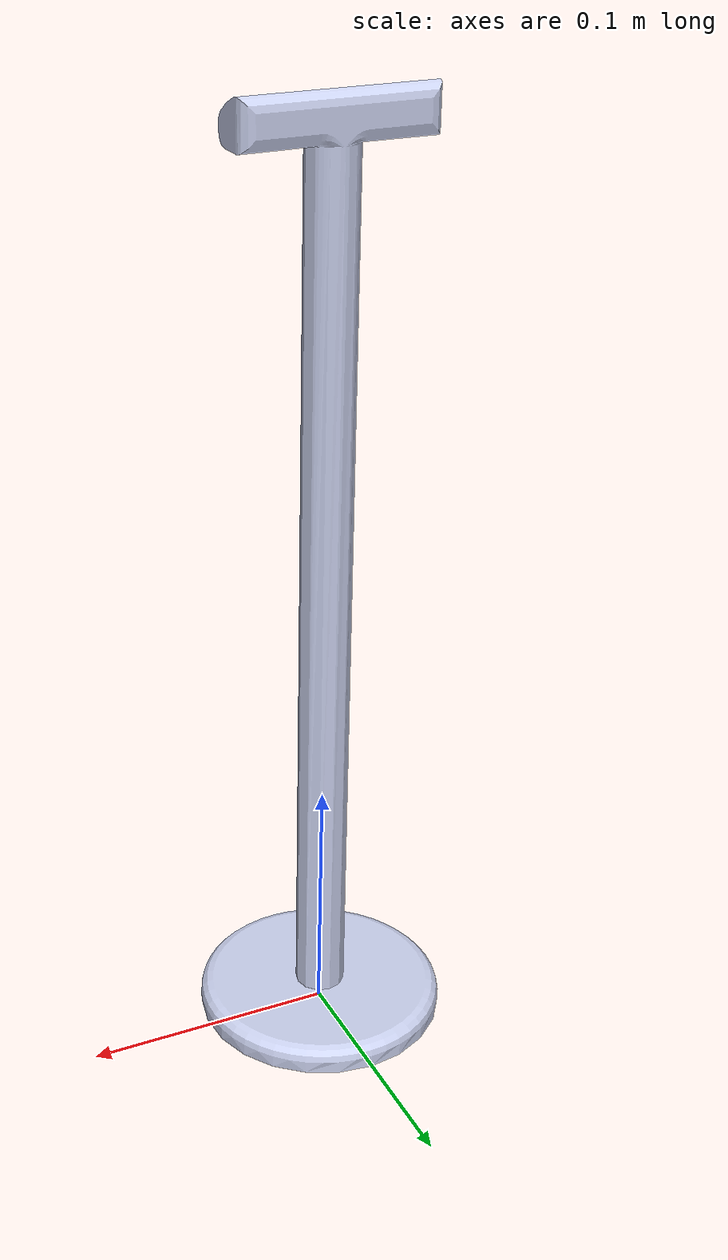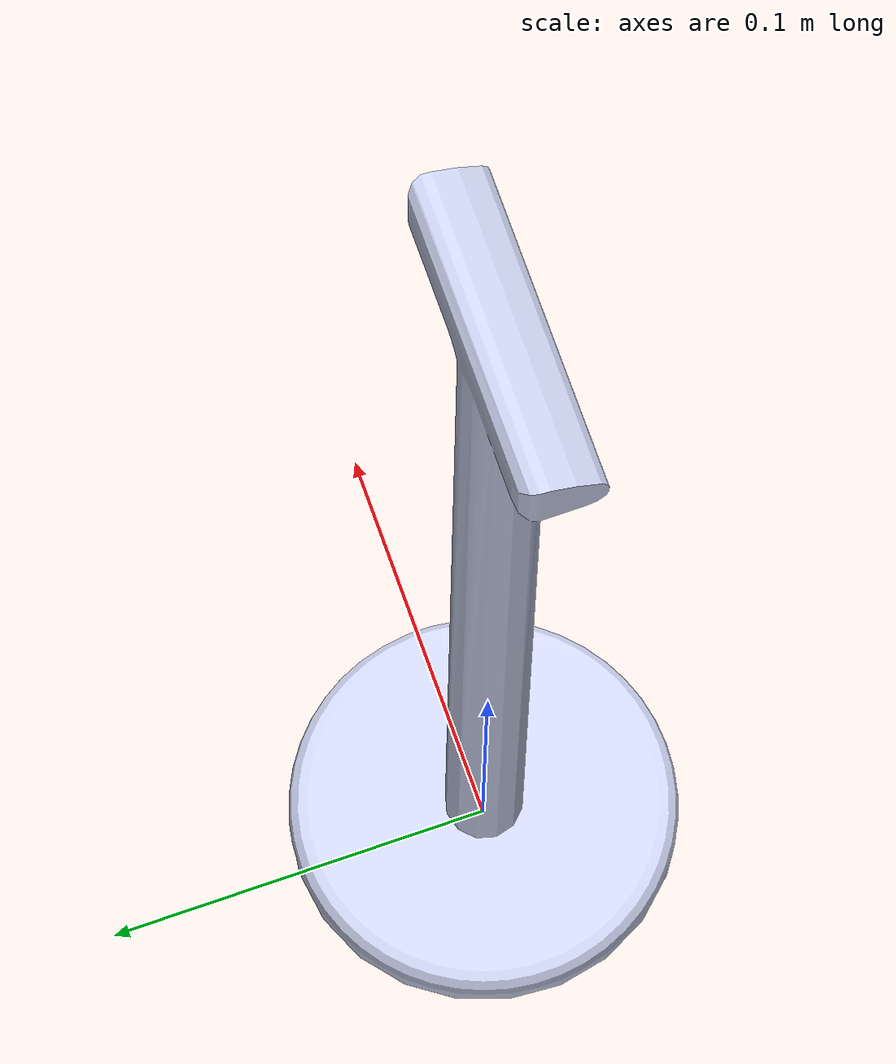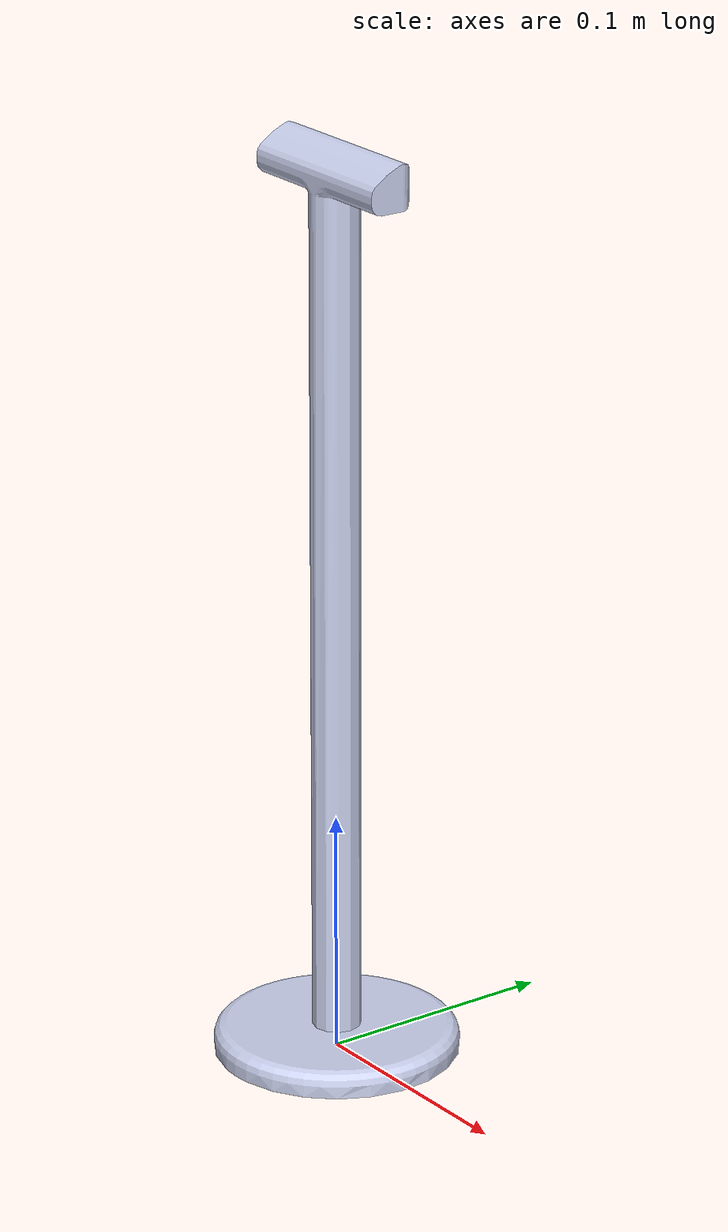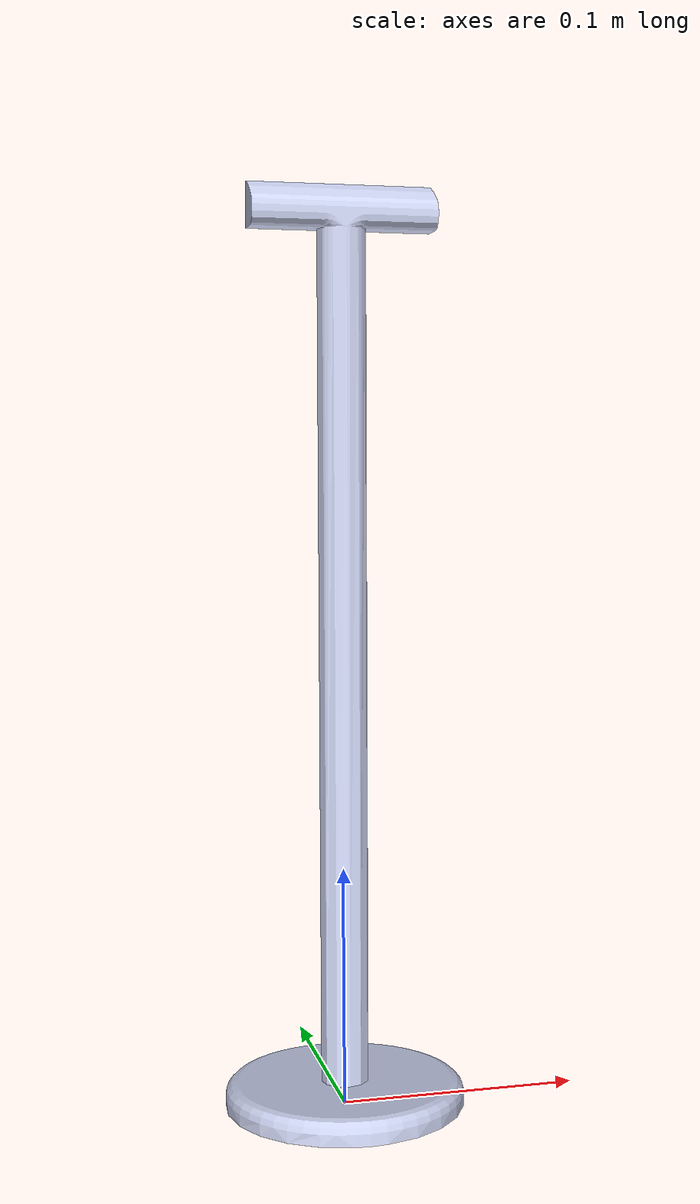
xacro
<?xml version="1.0" ?>
<robot
  name="camera_urdf" xmlns:xacro="http://ros.org/wiki/xacro">
  <link
    name="camera_base_link">
    <inertial>
      <origin
        xyz="-9.38726697477174E-08 8.20875611498E-05 0.13869018261447"
        rpy="0 0 0" />
      <mass
        value="0.209477059795264" />
      <inertia
        ixx="0.00397812724282523"
        ixy="3.16866821021073E-10"
        ixz="4.00938618070252E-09"
        iyy="0.00398789261449742"
        iyz="-4.06503680049778E-06"
        izz="0.000110809016168446" />
    </inertial>
    <visual>
      <origin
        xyz="0 0 0"
        rpy="0 0 0" />
      <geometry>
        <mesh
          filename="package://crx_description/meshes/base_link_camera.STL" />
      </geometry>
      <material
        name="">
        <color
          rgba="0.792156862745098 0.819607843137255 0.933333333333333 1" />
      </material>
    </visual>
    <collision>
      <origin
        xyz="0 0 0"
        rpy="0 0 0" />
      <geometry>
        <mesh
          filename="package://crx_description/meshes/base_link_camera.STL" />
      </geometry>
    </collision>
  </link>
   <link name="camera_link">
  </link>
  <joint name="camera_optical_joint" type="fixed">
      <parent link="camera_base_link"/>
      <child link="camera_link"/>
      <origin xyz="0 0 1" rpy="0 0 ${pi/2}"/>
  </joint>

  <gazebo reference="camera_link">
    <sensor name="camera_depth" type="depth">
      <update_rate>20</update_rate>
      <camera>
        <horizontal_fov>1.047198</horizontal_fov>
        <image>
          <width>640</width>
          <height>480</height>
          <format>R8G8B8</format>
        </image>
        <clip>
          <near>0.05</near>
          <far>8.0</far>
        </clip>
      </camera>
      <plugin name="camera_link_controller" filename="libgazebo_ros_camera.so">
        <baseline>0.2</baseline>
        <alwaysOn>true</alwaysOn>
        <updateRate>1.0</updateRate>
        <cameraName>camera_ir</cameraName>
        <imageTopicName>/camera/color/image_raw</imageTopicName>
        <cameraInfoTopicName>/camera/color/camera_info</cameraInfoTopicName>
        <depthImageTopicName>/camera/depth/image_raw</depthImageTopicName>
        <depthImageInfoTopicName>/camera/depth/camera_info</depthImageInfoTopicName>
        <pointCloudTopicName>/camera/depth/points</pointCloudTopicName>
        <frameName>camera_link</frameName>
        <pointCloudCutoff>0.5</pointCloudCutoff>
        <pointCloudCutoffMax>4.0</pointCloudCutoffMax>
        <distortionK1>0.00000001</distortionK1>
        <distortionK2>0.00000001</distortionK2>
        <distortionK3>0.00000001</distortionK3>
        <distortionT1>0.00000001</distortionT1>
        <distortionT2>0.00000001</distortionT2>
        <CxPrime>0</CxPrime>
        <Cx>0</Cx>
        <Cy>0</Cy>
        <focalLength>0</focalLength>
        <hackBaseline>0</hackBaseline>
      </plugin>
    </sensor>
  </gazebo>
</robot>
